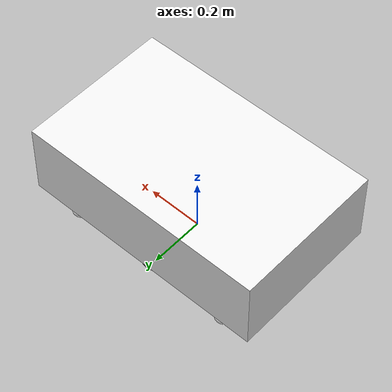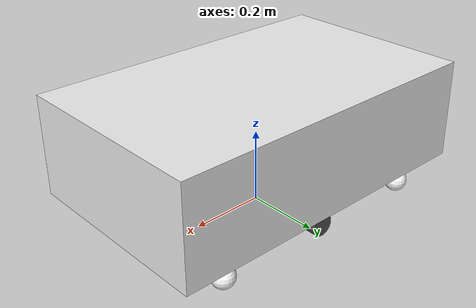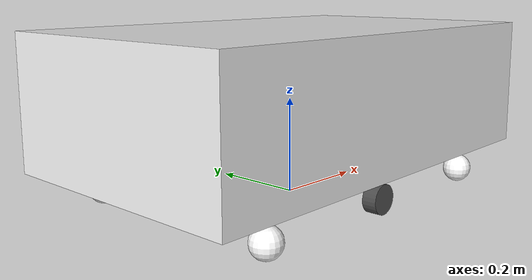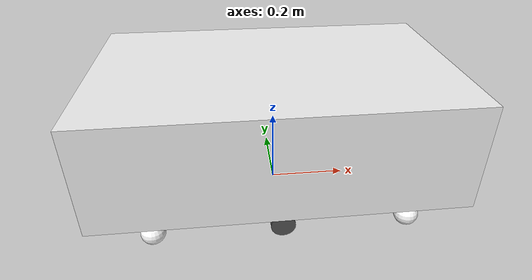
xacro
<?xml version="1.0"?>
<robot xmlns:xacro="http://www.ros.org/wiki/xacro" name="mir100">

<xacro:include filename="$(find mir100_description)/urdf/wheel.urdf.xacro" />

<!--                          PROPERTY LIST                         -->
<!-- Robot's dimensions -->
<xacro:property name="body_height" value="0.270" />
<xacro:property name="body_width" value="0.550" />
<xacro:property name="body_len" value="0.900" />
<xacro:property name="robot_height" value="0.350" />

<!-- Castor wheels -->
<xacro:property name="base_x_origin_to_castorwheel_origin" value="0.310" />
<xacro:property name="base_y_origin_to_castorwheel_origin" value="${base_y_origin_to_wheel_origin}" />

<!-- Motor wheels -->
<xacro:property name="motor_wheel_radius" value="0.03" />
<xacro:property name="motor_wheel_epsilon" value="0.0001" />
<xacro:property name="castor_wheel_radius" value="0.03" />
<xacro:property name="wheel_thickness" value="0.03" />
<xacro:property name="wheel_ext_s2s_distance" value="0.480" />
<xacro:property name="base_x_origin_to_wheel_origin" value="0.0" />
<xacro:property name="base_y_origin_to_wheel_origin" value="${(wheel_ext_s2s_distance-wheel_thickness)/2}" />
<xacro:property name="base_z_origin_to_wheel_origin" value="${motor_wheel_radius-robot_height}" />

<!-- Differential driver parameters -->
<xacro:property name="wheel_separation" value="${(wheel_ext_s2s_distance-wheel_thickness)}" />
<xacro:property name="wheel_radius" value="${motor_wheel_epsilon + motor_wheel_epsilon}" />

<!-- All mass in kg-->
<xacro:property name="motor_wheel_mass" value="1" />
<xacro:property name="castor_wheel_mass" value="1" />
<xacro:property name="body_mass" value="67" />

<!-- Friction-->
<xacro:property name="coulomb_friction_first_direction" value="0.01" />
<xacro:property name="coulomb_friction_second_direction" value="0.01" />

<!--                    MATERIAL DEFINITION                         -->
<material name="black">
	<color rgba="0 0 0 1"/>
</material>

<material name="white">
	<color rgba="1 1 1 1"/>
</material>

<material name="blue">
	<color rgba="0 0 0.8 1"/>
</material>

<!--                    INERTIA MACRO                              -->
<xacro:macro name="cylinder_inertia" params="m r h">
  <inertia  ixx="${m*(3*r*r+h*h)/12}" ixy = "0" ixz = "0"
              iyy="${m*(3*r*r+h*h)/12}" iyz = "0"
              izz="${m*r*r/2}" />
</xacro:macro>

<xacro:macro name="box_inertia" params="m x y z">
  <inertia  ixx="${m*(y*y+z*z)/12}" ixy = "0" ixz = "0"
            iyy="${m*(x*x+z*z)/12}" iyz = "0"
            izz="${m*(x*x+z*z)/12}" />
</xacro:macro>

<xacro:macro name="default_inertial" params="mass">
  <inertial>
    <mass value="${mass}" />
    <inertia ixx="1.0" ixy="0.0" ixz="0.0"
             iyy="1.0" iyz="0.0"
             izz="1.0" />
  </inertial>
</xacro:macro>

<!--                    BASE FOOTPRINT                             -->
<!-- Link that is on the ground right below base_link origin  -->
<link name="base_footprint">
  <inertial>
    <mass value="0.0001" />
    <origin xyz="0 0 0" />
    <inertia
      ixx="0.0001" ixy="0.0" ixz="0.0"
      iyy="0.0001" iyz="0.0"
      izz="0.0001" />
  </inertial>
  <visual>
      <origin xyz="0 0 0" rpy="0 0 0" />
      <geometry>
          <box size="0.001 0.001 0.001" />
      </geometry>
  </visual>
</link>

<gazebo reference="base_footprint">
  <turnGravityOff>false</turnGravityOff>
</gazebo>

<!--                    BASE LINK                                 -->
<link name="base_link">
	<visual>

      <geometry>
        <mesh filename="package://mir100_description/meshes/body.dae"/>
      </geometry>
			<origin rpy="0 0 0" xyz="0 0 -${body_height/2}"/>

	</visual>
	<collision>
		<geometry>
			<box size="${body_len} ${body_width} ${body_height}"/>
		</geometry>
		<origin rpy="0 0 0" xyz="0 0 -${body_height/2}"/>
	</collision>
	<inertial>
		<mass value="${body_mass}"/>
    <origin xyz="0 0 -${body_height/2}" /> <!-- center of gravity relative to the link's reference frame). -->
		<box_inertia  m="${body_mass}" x="${body_len}" y="${body_width}" z="${body_height}" />
	</inertial>
</link>

<joint name="base_footprint_joint" type="fixed">
  <origin xyz="0 0 ${robot_height}" rpy="0 0 0" />
  <parent link="base_footprint"/>
  <child link="base_link" />
</joint>

<gazebo reference="base_link">
	<turnGravityOff>false</turnGravityOff>
</gazebo>

<!--                    MOTOR WHEELS                             -->
<wheel lr="left" parent="base_link" translateX="0" translateY="1" flipY="1"/>
<wheel lr="right" parent="base_link" translateX="0" translateY="-1" flipY="1"/>

<!--                    CASTOR WHEELS                            -->
<!-- Left front -->
<link name="left_front_castor_wheel">
  <visual>
    <geometry>
      <sphere radius="${castor_wheel_radius}"/>
    </geometry>
    <material name="white"/>
  </visual>
  <collision>
    <geometry>
      <sphere radius="${castor_wheel_radius}" />
    </geometry>
  </collision>
  <xacro:default_inertial mass="${castor_wheel_mass}"/>
</link>

<joint name="base_to_left_front_castor_wheel" type="fixed">
  <parent link="base_link"/>
  <child link="left_front_castor_wheel"/>
  <origin rpy="0 0 0" xyz="${base_x_origin_to_castorwheel_origin} ${base_y_origin_to_castorwheel_origin} ${castor_wheel_radius-robot_height}"/>
</joint>

<!-- Left rear -->
<link name="left_rear_castor_wheel">
  <visual>
    <geometry>
      <sphere radius="${castor_wheel_radius}"/>
    </geometry>
    <material name="white"/>
  </visual>
  <collision>
    <geometry>
      <sphere radius="${castor_wheel_radius}" />
    </geometry>
  </collision>
  <xacro:default_inertial mass="${castor_wheel_mass}"/>
</link>

<joint name="base_to_left_rear_castor_wheel" type="fixed">
  <parent link="base_link"/>
  <child link="left_rear_castor_wheel"/>
  <origin rpy="0 0 0" xyz="-${base_x_origin_to_castorwheel_origin} ${base_y_origin_to_castorwheel_origin} ${castor_wheel_radius-robot_height}"/>
</joint>

<!-- Right front -->
<link name="right_front_castor_wheel">
  <visual>
    <geometry>
      <sphere radius="${castor_wheel_radius}"/>
    </geometry>
    <material name="white"/>
  </visual>
  <collision>
    <geometry>
      <sphere radius="${castor_wheel_radius}" />
    </geometry>
  </collision>
  <xacro:default_inertial mass="${castor_wheel_mass}"/>
</link>

<joint name="base_to_right_front_castor_wheel" type="fixed">
  <parent link="base_link"/>
  <child link="right_front_castor_wheel"/>
  <origin rpy="0 0 0" xyz="${base_x_origin_to_castorwheel_origin} -${base_y_origin_to_castorwheel_origin} ${castor_wheel_radius-robot_height}"/>
</joint>

<!-- Left rear -->
<link name="right_rear_castor_wheel">
  <visual>
    <geometry>
      <sphere radius="${castor_wheel_radius}"/>
    </geometry>
    <material name="white"/>
  </visual>
  <collision>
    <geometry>
      <sphere radius="${castor_wheel_radius}" />
    </geometry>
  </collision>
  <xacro:default_inertial mass="${castor_wheel_mass}"/>
</link>

<joint name="base_to_right_rear_castor_wheel" type="fixed">
  <parent link="base_link"/>
  <child link="right_rear_castor_wheel"/>
  <origin rpy="0 0 0" xyz="-${base_x_origin_to_castorwheel_origin} -${base_y_origin_to_castorwheel_origin} ${castor_wheel_radius-robot_height}"/>
</joint>

<!--                    GAZEBO FRICTION                                  -->
<gazebo reference="base_link">
  <mu1>${coulomb_friction_first_direction}</mu1>
  <mu2>${coulomb_friction_second_direction}</mu2>
  <material>Gazebo/white</material>
</gazebo>
<gazebo reference="left_front_castor_wheel">
  <mu1>${coulomb_friction_first_direction}</mu1>
  <mu2>${coulomb_friction_second_direction}</mu2>
  <material>Gazebo/Black</material>
</gazebo>
<gazebo reference="right_front_castor_wheel">
  <mu1>${coulomb_friction_first_direction}</mu1>
  <mu2>${coulomb_friction_second_direction}</mu2>
  <material>Gazebo/Black</material>
</gazebo>
<gazebo reference="left_rear_castor_wheel">
  <mu1>${coulomb_friction_first_direction}</mu1>
  <mu2>${coulomb_friction_second_direction}</mu2>
  <material>Gazebo/Black</material>
</gazebo>
<gazebo reference="right_rear_castor_wheel">
  <mu1>${coulomb_friction_first_direction}</mu1>
  <mu2>${coulomb_friction_second_direction}</mu2>
  <material>Gazebo/Black</material>
</gazebo>

<!--                    GAZEBO PLUGIN ROS CONTROL                        -->
<gazebo>
  <plugin name="gazebo_ros_control" filename="libgazebo_ros_control.so">
  </plugin>

  <!-- Publish real pose of the robot -->
  <plugin name="p3d_base_controller" filename="libgazebo_ros_p3d.so">
    <alwaysOn>true</alwaysOn>
    <updateRate>50.0</updateRate>
    <bodyName>base_footprint</bodyName>
    <topicName>ground_truth/state</topicName>
    <gaussianNoise>0.01</gaussianNoise>
    <frameName>world</frameName>
    <xyzOffsets>0 0 0</xyzOffsets>
    <rpyOffsets>0 0 0</rpyOffsets>
  </plugin>
</gazebo>

</robot>

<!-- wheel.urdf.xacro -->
<robot name="wheel" xmlns:xacro="http://www.ros.org/wiki/xacro">

  <xacro:macro name="wheel" params="lr parent translateX translateY flipY"> <!--lr: left, right -->
    <link name="${lr}_wheel">
      <visual>
        <origin xyz="0 0 0" rpy="${flipY*pi/2} 0  0 " />
        <geometry>
          <cylinder length="${wheel_thickness}" radius="${motor_wheel_radius+motor_wheel_epsilon}" />
        </geometry>
        <material name="DarkGray" />
      </visual>
      <collision>
        <origin xyz="0 0 0" rpy="${flipY*pi/2} 0 0 " />
        <geometry>
          <cylinder length="${wheel_thickness}" radius="${motor_wheel_radius+motor_wheel_epsilon}" />
        </geometry>
      </collision>
      <inertial>
        <mass value="${motor_wheel_mass}" />
        <origin xyz="0 0 0" />
        <cylinder_inertia  m="${motor_wheel_mass}" r="${motor_wheel_radius}" h="${wheel_thickness}" />
      </inertial>
    </link>

    <gazebo reference="${lr}_wheel">
      <mu1 value="1.0"/>
      <mu2 value="1.0"/>
      <kp  value="10000000.0" />
      <kd  value="1.0" />
      <fdir1 value="1 0 0"/>
      <material>Gazebo/Grey</material>
      <turnGravityOff>false</turnGravityOff>
    </gazebo>

    <joint name="${lr}_wheel_joint" type="continuous">
      <parent link="${parent}"/>
      <child link="${lr}_wheel"/>
      <origin xyz="${translateX * base_x_origin_to_wheel_origin} ${translateY * base_y_origin_to_wheel_origin} ${base_z_origin_to_wheel_origin}" rpy="0 0 0" />
      <axis xyz="0 1 0" rpy="0  0" />
      <joint_properties damping="0.0" friction="0.0"/>
    </joint>

    <!-- Transmission is important to link the joints and the controller -->
    <transmission name="${lr}_wheel_joint_trans">
      <type>transmission_interface/SimpleTransmission</type>
      <actuator name="${lr}_wheel_motor">
        <mechanicalReduction>1</mechanicalReduction>
      </actuator>
      <joint name="${lr}_wheel_joint">
        <hardwareInterface>hardware_interface/VelocityJointInterface</hardwareInterface>
      </joint>
    </transmission>

  </xacro:macro>
</robot>
